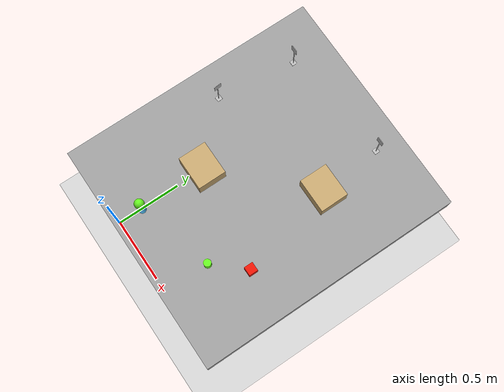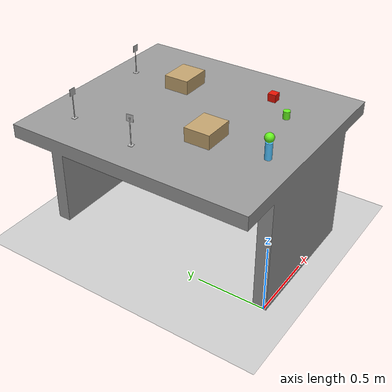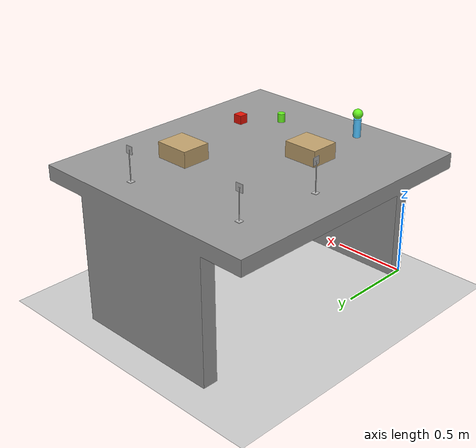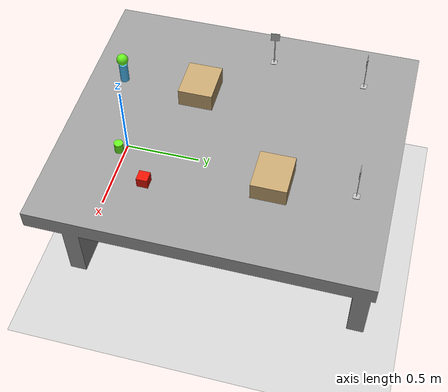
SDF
<sdf version="1.6">
 <world name="default">
  <light name="sun" type="directional">
   <pose>0 0 10 0 -0 0</pose>
   <diffuse>0.8 0.8 0.8 1</diffuse>
   <specular>0.1 0.1 0.1 1</specular>
   <attenuation>
    <range>1000</range>
    <constant>0.9</constant>
    <linear>0.01</linear>
    <quadratic>0.001</quadratic>
   </attenuation>
   <direction>-0.5 0.5 -1</direction>
  </light>
  <model name="ground_plane">
   <static>1</static>
   <link name="link">
    <collision name="collision">
     <geometry><plane><normal>0 0 1</normal><size>100 100</size></plane></geometry>
     <surface><friction><ode><mu>100</mu><mu2>50</mu2></ode></friction></surface>
    </collision>
    <visual name="visual">
     <cast_shadows>0</cast_shadows>
     <geometry><plane><normal>0 0 1</normal><size>100 100</size></plane></geometry>
     <material>
      <script><uri>file://media/materials/scripts/gazebo.material</uri><name>Gazebo/Grey</name></script>
     </material>
    </visual>
   </link>
  </model>
  <gravity>0 0 -9.8</gravity>
  <magnetic_field>6e-06 2.3e-05 -4.2e-05</magnetic_field>
  <atmosphere type="adiabatic"/>
  <physics name="default_physics" default="0" type="ode">
   <max_step_size>0.001</max_step_size>
   <real_time_factor>1</real_time_factor>
   <real_time_update_rate>1000</real_time_update_rate>
  </physics>
  <scene><ambient>0.4 0.4 0.4 1</ambient><background>0.7 0.7 0.7 1</background><shadows>1</shadows></scene>
  <spherical_coordinates>
   <surface_model>EARTH_WGS84</surface_model>
   <latitude_deg>0</latitude_deg>
   <longitude_deg>0</longitude_deg>
   <elevation>0</elevation>
   <heading_deg>0</heading_deg>
  </spherical_coordinates>
  <model name="table_goi_2">
   <pose>-0.440898 1.51948 0 0 -0 0</pose>
   <link name="link_0">
    <inertial>
     <mass>20</mass>
     <inertia>
      <ixx>0.166667</ixx>
      <ixy>0</ixy>
      <ixz>0</ixz>
      <iyy>0.166667</iyy>
      <iyz>0</iyz>
      <izz>0.166667</izz>
     </inertia>
    </inertial>
    <visual name="visual">
     <geometry><mesh><uri>file://models/stl/Table_goi.dae</uri><scale>1 1 1</scale></mesh></geometry>
     <material>
      <lighting>1</lighting>
      <script><uri>file://media/materials/scripts/gazebo.material</uri><name>Gazebo/Grey</name></script>
      <ambient>0.956 0.956 0.956 1</ambient>
      <diffuse>0.956 0.956 0.956 1</diffuse>
      <specular>0.01 0.01 0.01 1</specular>
      <emissive>0 0 0 1</emissive>
      <shader type="vertex"><normal_map>__default__</normal_map></shader>
     </material>
    </visual>
    <collision name="collision">
     <pose>0.94 -0.63 0.89 0 -0 0</pose>
     <geometry><box><size>1.6 1.8 0.1</size></box></geometry>
     <surface>
      <friction>
       <ode><mu>1</mu><mu2>1</mu2><fdir1>0 0 0</fdir1><slip1>0</slip1><slip2>0</slip2></ode>
       <torsional>
        <coefficient>1</coefficient>
        <patch_radius>0</patch_radius>
        <surface_radius>0</surface_radius>
        <use_patch_radius>1</use_patch_radius>
        <ode><slip>0</slip></ode>
       </torsional>
      </friction>
      <bounce><restitution_coefficient>0</restitution_coefficient><threshold>1e+06</threshold></bounce>
      <contact>
       <collide_without_contact>0</collide_without_contact>
       <collide_without_contact_bitmask>1</collide_without_contact_bitmask>
       <collide_bitmask>1</collide_bitmask>
       <ode>
        <soft_cfm>0</soft_cfm>
        <soft_erp>0.2</soft_erp>
        <kp>1e+13</kp>
        <kd>1</kd>
        <max_vel>0.01</max_vel>
        <min_depth>0</min_depth>
       </ode>
       <bullet>
        <split_impulse>1</split_impulse>
        <split_impulse_penetration_threshold>-0.01</split_impulse_penetration_threshold>
        <soft_cfm>0</soft_cfm>
        <soft_erp>0.2</soft_erp>
        <kp>1e+13</kp>
        <kd>1</kd>
       </bullet>
      </contact>
     </surface>
    </collision>
   </link>
   <static>1</static>
  </model>
  <model name="box_fisic">
   <pose>0.268444 0.627133 0.992491 3.14159 -2e-06 -3.14158</pose>
   <link name="link">
    <inertial>
     <mass>0.1</mass>
     <inertia>
      <ixx>0.166667</ixx>
      <ixy>0</ixy>
      <ixz>0</ixz>
      <iyy>0.166667</iyy>
      <iyz>0</iyz>
      <izz>0.166667</izz>
     </inertia>
    </inertial>
    <visual name="visual">
     <geometry><box><size>0.23 0.19 0.105</size></box></geometry>
     <material>
      <lighting>1</lighting>
      <script><uri>file://media/materials/scripts/gazebo.material</uri><name>Gazebo/Grey</name></script>
      <ambient>0.76 0.639 0.431 1</ambient>
      <diffuse>0.76 0.639 0.431 1</diffuse>
      <specular>0.1 0.1 0.1 1</specular>
      <emissive>0 0 0 1</emissive>
     </material>
    </visual>
    <collision name="collision">
     <geometry><box><size>0.23 0.19 0.105</size></box></geometry>
     <surface>
      <friction>
       <ode><mu>1</mu><mu2>1</mu2><fdir1>0 0 0</fdir1><slip1>0</slip1><slip2>0</slip2></ode>
       <torsional>
        <coefficient>1</coefficient>
        <patch_radius>0</patch_radius>
        <surface_radius>0</surface_radius>
        <use_patch_radius>1</use_patch_radius>
        <ode><slip>0</slip></ode>
       </torsional>
      </friction>
      <bounce><restitution_coefficient>0</restitution_coefficient><threshold>1e+06</threshold></bounce>
      <contact>
       <collide_without_contact>0</collide_without_contact>
       <collide_without_contact_bitmask>1</collide_without_contact_bitmask>
       <collide_bitmask>1</collide_bitmask>
       <ode>
        <soft_cfm>0</soft_cfm>
        <soft_erp>0.2</soft_erp>
        <kp>1e+13</kp>
        <kd>1</kd>
        <max_vel>0.01</max_vel>
        <min_depth>0</min_depth>
       </ode>
       <bullet>
        <split_impulse>1</split_impulse>
        <split_impulse_penetration_threshold>-0.01</split_impulse_penetration_threshold>
        <soft_cfm>0</soft_cfm>
        <soft_erp>0.2</soft_erp>
        <kp>1e+13</kp>
        <kd>1</kd>
       </bullet>
      </contact>
     </surface>
    </collision>
   </link>
   <static>0</static>
  </model>
  <model name="box_fisic_0">
   <pose>0.801779 1.16181 0.992500 3.14159 -1e-06 -3.14158</pose>
   <link name="link">
    <inertial>
     <mass>0.1</mass>
     <inertia>
      <ixx>0.166667</ixx>
      <ixy>0</ixy>
      <ixz>0</ixz>
      <iyy>0.166667</iyy>
      <iyz>0</iyz>
      <izz>0.166667</izz>
     </inertia>
    </inertial>
    <visual name="visual">
     <geometry><box><size>0.23 0.19 0.105</size></box></geometry>
     <material>
      <lighting>1</lighting>
      <script><uri>file://media/materials/scripts/gazebo.material</uri><name>Gazebo/Grey</name></script>
      <ambient>0.76 0.639 0.431 1</ambient>
      <diffuse>0.76 0.639 0.431 1</diffuse>
      <specular>0.1 0.1 0.1 1</specular>
      <emissive>0 0 0 1</emissive>
     </material>
    </visual>
    <collision name="collision">
     <geometry><box><size>0.23 0.19 0.105</size></box></geometry>
     <surface>
      <friction>
       <ode><mu>1</mu><mu2>1</mu2><fdir1>0 0 0</fdir1><slip1>0</slip1><slip2>0</slip2></ode>
       <torsional>
        <coefficient>1</coefficient>
        <patch_radius>0</patch_radius>
        <surface_radius>0</surface_radius>
        <use_patch_radius>1</use_patch_radius>
        <ode><slip>0</slip></ode>
       </torsional>
      </friction>
      <bounce><restitution_coefficient>0</restitution_coefficient><threshold>1e+06</threshold></bounce>
      <contact>
       <collide_without_contact>0</collide_without_contact>
       <collide_without_contact_bitmask>1</collide_without_contact_bitmask>
       <collide_bitmask>1</collide_bitmask>
       <ode>
        <soft_cfm>0</soft_cfm>
        <soft_erp>0.2</soft_erp>
        <kp>1e+13</kp>
        <kd>1</kd>
        <max_vel>0.01</max_vel>
        <min_depth>0</min_depth>
       </ode>
       <bullet>
        <split_impulse>1</split_impulse>
        <split_impulse_penetration_threshold>-0.01</split_impulse_penetration_threshold>
        <soft_cfm>0</soft_cfm>
        <soft_erp>0.2</soft_erp>
        <kp>1e+13</kp>
        <kd>1</kd>
       </bullet>
      </contact>
     </surface>
    </collision>
   </link>
   <static>0</static>
  </model>
  <model name="aruco00">
   <link name="link_0">
    <inertial>
     <mass>0.015</mass>
     <inertia>
      <ixx>0.166667</ixx>
      <ixy>0</ixy>
      <ixz>0</ixz>
      <iyy>0.166667</iyy>
      <iyz>0</iyz>
      <izz>0.166667</izz>
     </inertia>
    </inertial>
    <visual name="visual">
     <geometry><mesh><uri>file://models/stl/ARUCOS/00/aruco_0.dae</uri><scale>1 1 1</scale></mesh></geometry>
    </visual>
    <collision name="collision">
     <geometry><mesh><uri>file://models/stl/ARUCOS/00/aruco_0.dae</uri><scale>1 1 1</scale></mesh></geometry>
     <surface>
      <friction>
       <ode><mu>1</mu><mu2>1</mu2><fdir1>0 0 0</fdir1><slip1>0</slip1><slip2>0</slip2></ode>
       <torsional>
        <coefficient>1</coefficient>
        <patch_radius>0</patch_radius>
        <surface_radius>0</surface_radius>
        <use_patch_radius>1</use_patch_radius>
        <ode><slip>0</slip></ode>
       </torsional>
      </friction>
      <bounce><restitution_coefficient>0</restitution_coefficient><threshold>1e+06</threshold></bounce>
      <contact>
       <collide_without_contact>0</collide_without_contact>
       <collide_without_contact_bitmask>1</collide_without_contact_bitmask>
       <collide_bitmask>1</collide_bitmask>
       <ode>
        <soft_cfm>0</soft_cfm>
        <soft_erp>0.2</soft_erp>
        <kp>1e+13</kp>
        <kd>1</kd>
        <max_vel>0.01</max_vel>
        <min_depth>0</min_depth>
       </ode>
       <bullet>
        <split_impulse>1</split_impulse>
        <split_impulse_penetration_threshold>-0.01</split_impulse_penetration_threshold>
        <soft_cfm>0</soft_cfm>
        <soft_erp>0.2</soft_erp>
        <kp>1e+13</kp>
        <kd>1</kd>
       </bullet>
      </contact>
     </surface>
    </collision>
   </link>
   <static>0</static>
   <pose>-0.070753 0.970284 0.939990 1e-06 -1e-06 1.67204</pose>
  </model>
  <model name="aruco01">
   <link name="link_0">
    <inertial>
     <mass>0.015</mass>
     <inertia>
      <ixx>0.166667</ixx>
      <ixy>0</ixy>
      <ixz>0</ixz>
      <iyy>0.166667</iyy>
      <iyz>0</iyz>
      <izz>0.166667</izz>
     </inertia>
    </inertial>
    <visual name="visual">
     <geometry><mesh><uri>file://models/stl/ARUCOS/01/aruco_01.dae</uri><scale>1 1 1</scale></mesh></geometry>
    </visual>
    <collision name="collision">
     <geometry><mesh><uri>file://models/stl/ARUCOS/01/aruco_01.dae</uri><scale>1 1 1</scale></mesh></geometry>
     <surface>
      <friction>
       <ode><mu>1</mu><mu2>1</mu2><fdir1>0 0 0</fdir1><slip1>0</slip1><slip2>0</slip2></ode>
       <torsional>
        <coefficient>1</coefficient>
        <patch_radius>0</patch_radius>
        <surface_radius>0</surface_radius>
        <use_patch_radius>1</use_patch_radius>
        <ode><slip>0</slip></ode>
       </torsional>
      </friction>
      <bounce><restitution_coefficient>0</restitution_coefficient><threshold>1e+06</threshold></bounce>
      <contact>
       <collide_without_contact>0</collide_without_contact>
       <collide_without_contact_bitmask>1</collide_without_contact_bitmask>
       <collide_bitmask>1</collide_bitmask>
       <ode>
        <soft_cfm>0</soft_cfm>
        <soft_erp>0.2</soft_erp>
        <kp>1e+13</kp>
        <kd>1</kd>
        <max_vel>0.01</max_vel>
        <min_depth>0</min_depth>
       </ode>
       <bullet>
        <split_impulse>1</split_impulse>
        <split_impulse_penetration_threshold>-0.01</split_impulse_penetration_threshold>
        <soft_cfm>0</soft_cfm>
        <soft_erp>0.2</soft_erp>
        <kp>1e+13</kp>
        <kd>1</kd>
       </bullet>
      </contact>
     </surface>
    </collision>
   </link>
   <static>0</static>
   <pose>-0.006895 1.5004 0.93999 2e-06 -6e-06 0</pose>
  </model>
  <model name="aruco02">
   <link name="link_1">
    <inertial>
     <mass>0.015</mass>
     <inertia>
      <ixx>0.166667</ixx>
      <ixy>0</ixy>
      <ixz>0</ixz>
      <iyy>0.166667</iyy>
      <iyz>0</iyz>
      <izz>0.166667</izz>
     </inertia>
    </inertial>
    <visual name="visual">
     <geometry><mesh><uri>file://models/stl/ARUCOS/02/aruco_02.dae</uri><scale>1 1 1</scale></mesh></geometry>
    </visual>
    <collision name="collision">
     <geometry><mesh><uri>file://models/stl/ARUCOS/02/aruco_02.dae</uri><scale>1 1 1</scale></mesh></geometry>
     <surface>
      <friction>
       <ode><mu>1</mu><mu2>1</mu2><fdir1>0 0 0</fdir1><slip1>0</slip1><slip2>0</slip2></ode>
       <torsional>
        <coefficient>1</coefficient>
        <patch_radius>0</patch_radius>
        <surface_radius>0</surface_radius>
        <use_patch_radius>1</use_patch_radius>
        <ode><slip>0</slip></ode>
       </torsional>
      </friction>
      <bounce><restitution_coefficient>0</restitution_coefficient><threshold>1e+06</threshold></bounce>
      <contact>
       <collide_without_contact>0</collide_without_contact>
       <collide_without_contact_bitmask>1</collide_without_contact_bitmask>
       <collide_bitmask>1</collide_bitmask>
       <ode>
        <soft_cfm>0</soft_cfm>
        <soft_erp>0.2</soft_erp>
        <kp>1e+13</kp>
        <kd>1</kd>
        <max_vel>0.01</max_vel>
        <min_depth>0</min_depth>
       </ode>
       <bullet>
        <split_impulse>1</split_impulse>
        <split_impulse_penetration_threshold>-0.01</split_impulse_penetration_threshold>
        <soft_cfm>0</soft_cfm>
        <soft_erp>0.2</soft_erp>
        <kp>1e+13</kp>
        <kd>1</kd>
       </bullet>
      </contact>
     </surface>
    </collision>
   </link>
   <static>0</static>
   <pose>0.773862 1.58871 0.939990 0 -2e-06 0</pose>
  </model>
  <model name="ball_green_65">
   <link name="link_0">
    <inertial>
     <mass>0.01</mass>
     <inertia>
      <ixx>0.00291206</ixx>
      <ixy>0</ixy>
      <ixz>0</ixz>
      <iyy>0.00291206</iyy>
      <iyz>0</iyz>
      <izz>0.00291206</izz>
     </inertia>
    </inertial>
    <visual name="visual">
     <geometry><sphere><radius>0.0325</radius></sphere></geometry>
     <material>
      <lighting>1</lighting>
      <script><uri>file://media/materials/scripts/gazebo.material</uri><name>Gazebo/Grey</name></script>
      <ambient>0.396 0.941 0.125 1</ambient>
      <diffuse>0.396 0.941 0.125 1</diffuse>
      <specular>0.01 0.01 0.01 1</specular>
      <emissive>0 0 0 1</emissive>
      <shader type="vertex"><normal_map>__default__</normal_map></shader>
     </material>
    </visual>
    <collision name="collision">
     <geometry><sphere><radius>0.0325</radius></sphere></geometry>
     <surface>
      <friction>
       <ode><mu>1</mu><mu2>1</mu2><fdir1>0 0 0</fdir1><slip1>0</slip1><slip2>0</slip2></ode>
       <torsional>
        <coefficient>1</coefficient>
        <patch_radius>0</patch_radius>
        <surface_radius>0</surface_radius>
        <use_patch_radius>1</use_patch_radius>
        <ode><slip>0</slip></ode>
       </torsional>
      </friction>
      <bounce><restitution_coefficient>0</restitution_coefficient><threshold>1e+06</threshold></bounce>
      <contact>
       <collide_without_contact>0</collide_without_contact>
       <collide_without_contact_bitmask>1</collide_without_contact_bitmask>
       <collide_bitmask>1</collide_bitmask>
       <ode>
        <soft_cfm>0</soft_cfm>
        <soft_erp>0.2</soft_erp>
        <kp>1e+13</kp>
        <kd>1</kd>
        <max_vel>0.01</max_vel>
        <min_depth>0</min_depth>
       </ode>
       <bullet>
        <split_impulse>1</split_impulse>
        <split_impulse_penetration_threshold>-0.01</split_impulse_penetration_threshold>
        <soft_cfm>0</soft_cfm>
        <soft_erp>0.2</soft_erp>
        <kp>1e+13</kp>
        <kd>1</kd>
       </bullet>
      </contact>
     </surface>
    </collision>
   </link>
   <static>0</static>
   <pose>0.272914 0.179985 1.092482 0.08608 -0.064164 -0.00239</pose>
  </model>
  <model name="cylinder_big_blue">
   <pose>0.272927 0.179994 1.000002 -0.000262 -0.000386 2.4e-05</pose>
   <link name="link_0_0">
    <inertial>
     <mass>0.05</mass>
     <inertia><ixx>0.145833</ixx><ixy>0</ixy><ixz>0</ixz><iyy>0.145833</iyy><iyz>0</iyz><izz>0.125</izz></inertia>
    </inertial>
    <visual name="visual">
     <geometry><cylinder><radius>0.0245</radius><length>0.12</length></cylinder></geometry>
     <material>
      <lighting>1</lighting>
      <script><uri>file://media/materials/scripts/gazebo.material</uri><name>Gazebo/Grey</name></script>
      <ambient>0.313 0.764 1 1</ambient>
      <diffuse>0.313 0.764 1 1</diffuse>
      <specular>0.1 0.1 0.1 1</specular>
      <emissive>0 0 0 1</emissive>
      <shader type="vertex"><normal_map>__default__</normal_map></shader>
     </material>
    </visual>
    <collision name="collision">
     <geometry><cylinder><radius>0.0245</radius><length>0.12</length></cylinder></geometry>
     <surface>
      <friction>
       <ode><mu>1</mu><mu2>1</mu2><fdir1>0 0 0</fdir1><slip1>0</slip1><slip2>0</slip2></ode>
       <torsional>
        <coefficient>1</coefficient>
        <patch_radius>0</patch_radius>
        <surface_radius>0</surface_radius>
        <use_patch_radius>1</use_patch_radius>
        <ode><slip>0</slip></ode>
       </torsional>
      </friction>
      <bounce><restitution_coefficient>0</restitution_coefficient><threshold>1e+06</threshold></bounce>
      <contact>
       <collide_without_contact>0</collide_without_contact>
       <collide_without_contact_bitmask>1</collide_without_contact_bitmask>
       <collide_bitmask>1</collide_bitmask>
       <ode>
        <soft_cfm>0</soft_cfm>
        <soft_erp>0.2</soft_erp>
        <kp>1e+13</kp>
        <kd>1</kd>
        <max_vel>0.01</max_vel>
        <min_depth>0</min_depth>
       </ode>
       <bullet>
        <split_impulse>1</split_impulse>
        <split_impulse_penetration_threshold>-0.01</split_impulse_penetration_threshold>
        <soft_cfm>0</soft_cfm>
        <soft_erp>0.2</soft_erp>
        <kp>1e+13</kp>
        <kd>1</kd>
       </bullet>
      </contact>
     </surface>
    </collision>
   </link>
   <static>0</static>
  </model>
  <model name="cube_red_0">
   <pose>0.959721 0.521133 0.970007 8e-06 0.000214 -8e-06</pose>
   <link name="link">
    <inertial>
     <mass>0.05</mass>
     <inertia>
      <ixx>0.166667</ixx>
      <ixy>0</ixy>
      <ixz>0</ixz>
      <iyy>0.166667</iyy>
      <iyz>0</iyz>
      <izz>0.166667</izz>
     </inertia>
    </inertial>
    <visual name="visual">
     <geometry><box><size>0.06 0.06 0.06</size></box></geometry>
     <material>
      <script><name>Gazebo/Grey</name><uri>file://media/materials/scripts/gazebo.material</uri></script>
      <shader type="pixel"><normal_map>__default__</normal_map></shader>
      <ambient>0.901 0.074 0.015 1</ambient>
      <diffuse>0.901 0.074 0.015 1</diffuse>
      <specular>0.1 0.1 0.1 1</specular>
      <emissive>0 0 0 1</emissive>
     </material>
    </visual>
    <collision name="collision">
     <geometry><box><size>0.06 0.06 0.06</size></box></geometry>
     <surface>
      <friction>
       <ode><mu>1</mu><mu2>1</mu2><fdir1>0 0 0</fdir1><slip1>0</slip1><slip2>0</slip2></ode>
       <torsional>
        <coefficient>1</coefficient>
        <patch_radius>0</patch_radius>
        <surface_radius>0</surface_radius>
        <use_patch_radius>1</use_patch_radius>
        <ode><slip>0</slip></ode>
       </torsional>
      </friction>
      <bounce><restitution_coefficient>0</restitution_coefficient><threshold>1e+06</threshold></bounce>
      <contact>
       <collide_without_contact>0</collide_without_contact>
       <collide_without_contact_bitmask>1</collide_without_contact_bitmask>
       <collide_bitmask>1</collide_bitmask>
       <ode>
        <soft_cfm>0</soft_cfm>
        <soft_erp>0.2</soft_erp>
        <kp>1e+13</kp>
        <kd>1</kd>
        <max_vel>0.01</max_vel>
        <min_depth>0</min_depth>
       </ode>
       <bullet>
        <split_impulse>1</split_impulse>
        <split_impulse_penetration_threshold>-0.01</split_impulse_penetration_threshold>
        <soft_cfm>0</soft_cfm>
        <soft_erp>0.2</soft_erp>
        <kp>1e+13</kp>
        <kd>1</kd>
       </bullet>
      </contact>
     </surface>
    </collision>
   </link>
   <static>0</static>
  </model>
  <model name="cylinder_medium_green">
   <pose>0.782676 0.325500 0.970017 -0.000702 -0.000054 2.6e-05</pose>
   <link name="link_1">
    <inertial>
     <mass>0.04</mass>
     <inertia><ixx>0.145833</ixx><ixy>0</ixy><ixz>0</ixz><iyy>0.145833</iyy><iyz>0</iyz><izz>0.125</izz></inertia>
    </inertial>
    <visual name="visual">
     <geometry><cylinder><radius>0.0246</radius><length>0.06</length></cylinder></geometry>
     <material>
      <lighting>1</lighting>
      <script><uri>file://media/materials/scripts/gazebo.material</uri><name>Gazebo/Grey</name></script>
      <ambient>0.396 0.941 0.125 1</ambient>
      <diffuse>0.396 0.941 0.125 1</diffuse>
      <specular>0.1 0.1 0.1 1</specular>
      <emissive>0 0 0 1</emissive>
      <shader type="vertex"><normal_map>__default__</normal_map></shader>
     </material>
    </visual>
    <collision name="collision">
     <geometry><cylinder><radius>0.0246</radius><length>0.06</length></cylinder></geometry>
     <surface>
      <friction>
       <ode><mu>1</mu><mu2>1</mu2><fdir1>0 0 0</fdir1><slip1>0</slip1><slip2>0</slip2></ode>
       <torsional>
        <coefficient>1</coefficient>
        <patch_radius>0</patch_radius>
        <surface_radius>0</surface_radius>
        <use_patch_radius>1</use_patch_radius>
        <ode><slip>0</slip></ode>
       </torsional>
      </friction>
      <bounce><restitution_coefficient>0</restitution_coefficient><threshold>1e+06</threshold></bounce>
      <contact>
       <collide_without_contact>0</collide_without_contact>
       <collide_without_contact_bitmask>1</collide_without_contact_bitmask>
       <collide_bitmask>1</collide_bitmask>
       <ode>
        <soft_cfm>0</soft_cfm>
        <soft_erp>0.2</soft_erp>
        <kp>1e+13</kp>
        <kd>1</kd>
        <max_vel>0.01</max_vel>
        <min_depth>0</min_depth>
       </ode>
       <bullet>
        <split_impulse>1</split_impulse>
        <split_impulse_penetration_threshold>-0.01</split_impulse_penetration_threshold>
        <soft_cfm>0</soft_cfm>
        <soft_erp>0.2</soft_erp>
        <kp>1e+13</kp>
        <kd>1</kd>
       </bullet>
      </contact>
     </surface>
    </collision>
   </link>
   <static>0</static>
  </model>
 </world>
</sdf>
